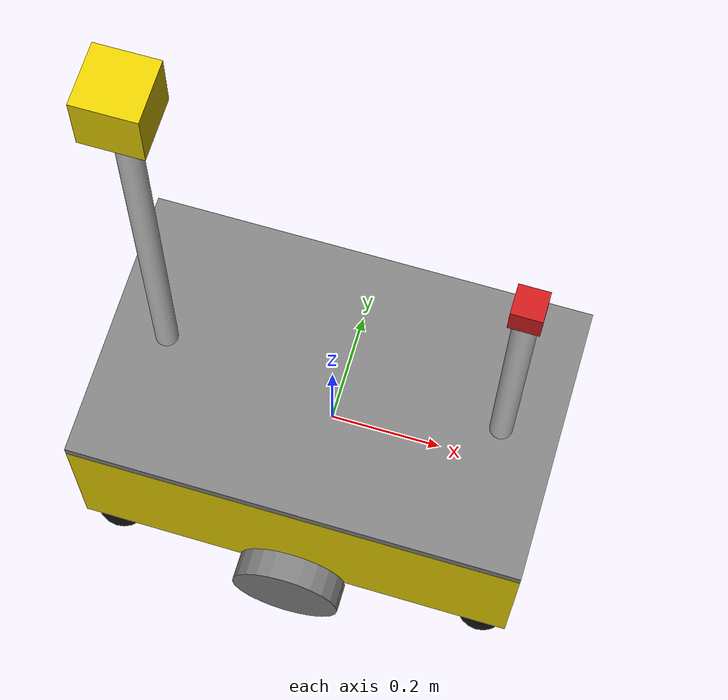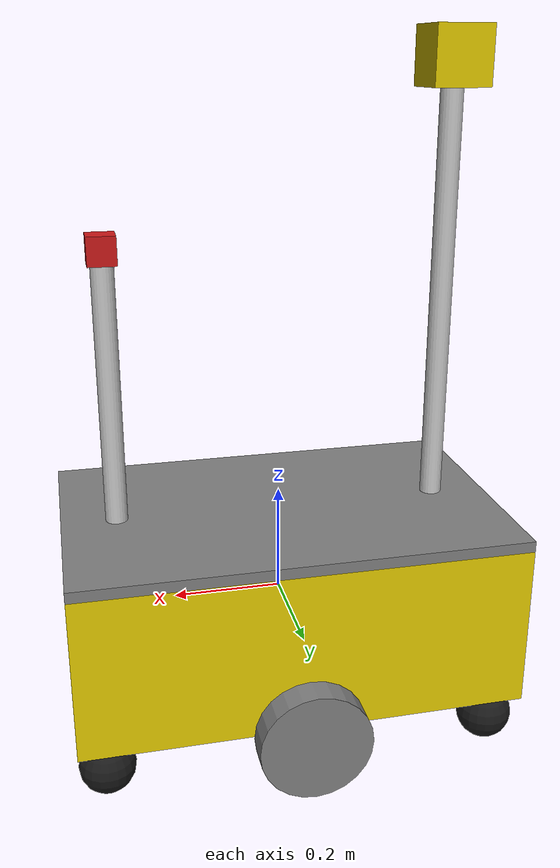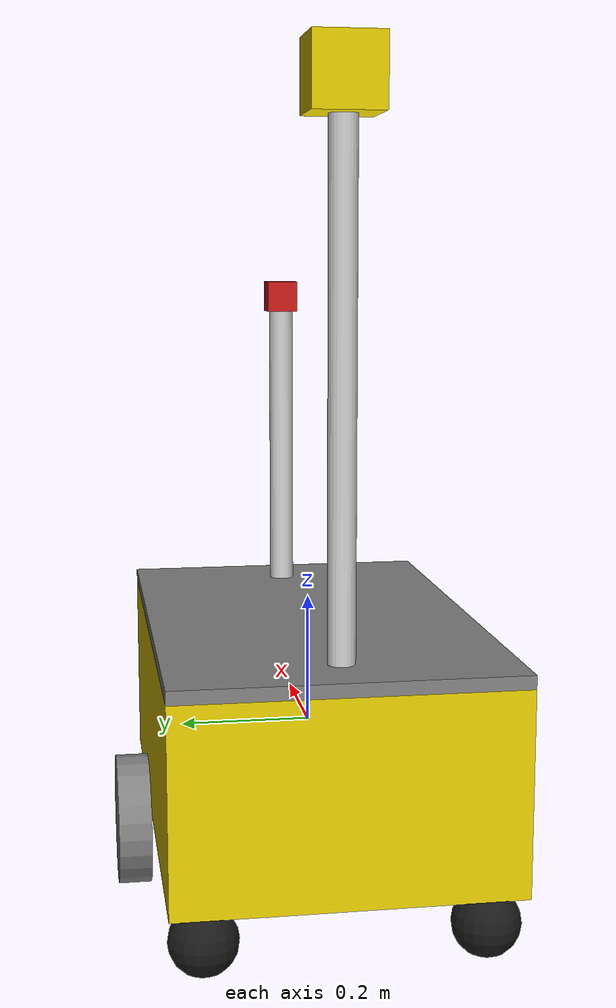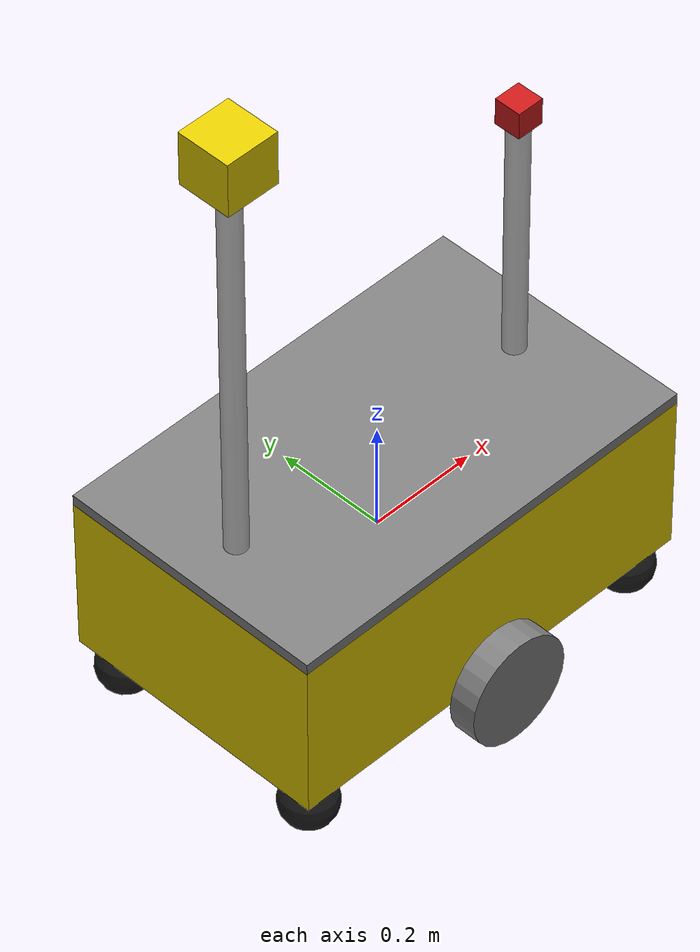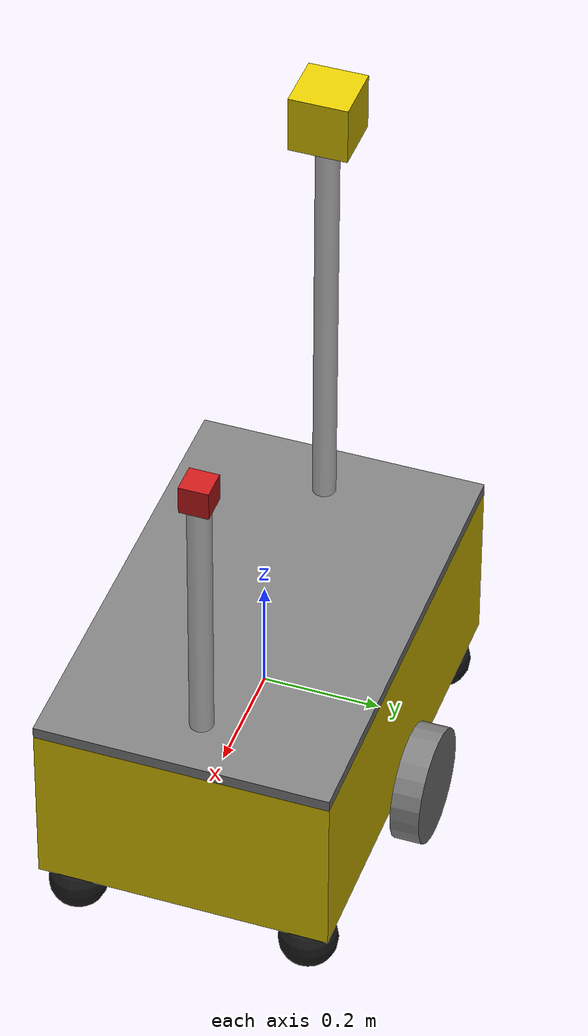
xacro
<?xml version="1.0"?>
<robot name="orange_robot" xmlns:xacro="http://ros.org/wiki/xacro">

  <!-- 색상 물감 준비 -->
  <material name="yellow"><color rgba="0.9 0.8 0.0 1.0"/></material>
  <material name="grey"><color rgba="0.5 0.5 0.5 1.0"/></material>
  <material name="black"><color rgba="0.1 0.1 0.1 1.0"/></material>
  <material name="silver"><color rgba="0.8 0.8 0.8 1.0"/></material>
  <material name="red"><color rgba="0.8 0.1 0.1 1.0"/></material>

  <!-- 1. 노란색 본체 -->
  <link name="base_link">
    <visual>
      <geometry><box size="0.8 0.5 0.3"/></geometry>
      <material name="yellow"/>
    </visual>
  </link>

  <!-- 2. 회색 지붕 -->
  <joint name="cover_joint" type="fixed">
    <parent link="base_link"/><child link="top_cover"/>
    <origin xyz="0 0 0.16" rpy="0 0 0"/>
  </joint>
  <link name="top_cover">
    <visual><geometry><box size="0.8 0.5 0.02"/></geometry><material name="grey"/></visual>
  </link>

  <!-- 3. 은색 기둥 두 개 (마스트) -->
  <joint name="front_mast_joint" type="fixed">
    <parent link="base_link"/><child link="front_mast_link"/>
    <origin xyz="0.3 0 0.41" rpy="0 0 0"/>
  </joint>
  <link name="front_mast_link">
    <visual><geometry><cylinder radius="0.02" length="0.5"/></geometry><material name="silver"/></visual>
  </link>

  <joint name="rear_mast_joint" type="fixed">
    <parent link="base_link"/><child link="rear_mast_link"/>
    <origin xyz="-0.3 0 0.56" rpy="0 0 0"/>
  </joint>
  <link name="rear_mast_link">
    <visual><geometry><cylinder radius="0.02" length="0.8"/></geometry><material name="silver"/></visual>
  </link>

  <!-- 4. 빨간색 카메라 & 노란색 센서 -->
  <joint name="front_camera_joint" type="fixed">
    <parent link="front_mast_link"/><child link="front_camera"/>
    <origin xyz="0 0 0.25" rpy="0 0 0"/>
  </joint>
  <link name="front_camera">
    <visual><geometry><box size="0.05 0.05 0.05"/></geometry><material name="red"/></visual>
  </link>

  <joint name="rear_sensor_joint" type="fixed">
    <parent link="rear_mast_link"/><child link="rear_sensor"/>
    <origin xyz="0 0 0.4" rpy="0 0 0"/>
  </joint>
  <link name="rear_sensor">
    <visual><geometry><box size="0.1 0.1 0.1"/></geometry><material name="yellow"/></visual>
  </link>

  <!-- 5. 크고 듬직한 메인 구동 바퀴 -->
  <joint name="left_wheel_hinge" type="continuous">
    <parent link="base_link"/><child link="left_wheel"/>
    <origin xyz="0 0.28 -0.15" rpy="-1.5707 0 0"/>
    <axis xyz="0 0 1"/>
  </joint>
  <link name="left_wheel">
    <visual><geometry><cylinder radius="0.1" length="0.05"/></geometry><material name="grey"/></visual>
  </link>

  <joint name="right_wheel_hinge" type="continuous">
    <parent link="base_link"/><child link="right_wheel"/>
    <origin xyz="0 -0.28 -0.15" rpy="-1.5707 0 0"/>
    <axis xyz="0 0 1"/>
  </joint>
  <link name="right_wheel">
    <visual><geometry><cylinder radius="0.1" length="0.05"/></geometry><material name="grey"/></visual>
  </link>

  <!-- 6. 까만색 보조 바퀴 (캐스터 4개) -->
  <joint name="fl_caster_joint" type="fixed"><parent link="base_link"/><child link="fl_caster"/><origin xyz="0.35 0.2 -0.2" rpy="0 0 0"/></joint>
  <link name="fl_caster"><visual><geometry><sphere radius="0.05"/></geometry><material name="black"/></visual></link>
  <joint name="fr_caster_joint" type="fixed"><parent link="base_link"/><child link="fr_caster"/><origin xyz="0.35 -0.2 -0.2" rpy="0 0 0"/></joint>
  <link name="fr_caster"><visual><geometry><sphere radius="0.05"/></geometry><material name="black"/></visual></link>
  <joint name="rl_caster_joint" type="fixed"><parent link="base_link"/><child link="rl_caster"/><origin xyz="-0.35 0.2 -0.2" rpy="0 0 0"/></joint>
  <link name="rl_caster"><visual><geometry><sphere radius="0.05"/></geometry><material name="black"/></visual></link>
  <joint name="rr_caster_joint" type="fixed"><parent link="base_link"/><child link="rr_caster"/><origin xyz="-0.35 -0.2 -0.2" rpy="0 0 0"/></joint>
  <link name="rr_caster"><visual><geometry><sphere radius="0.05"/></geometry><material name="black"/></visual></link>

</robot>
